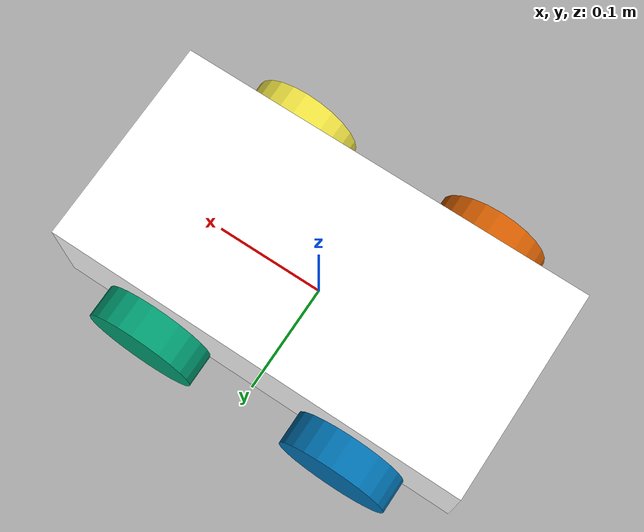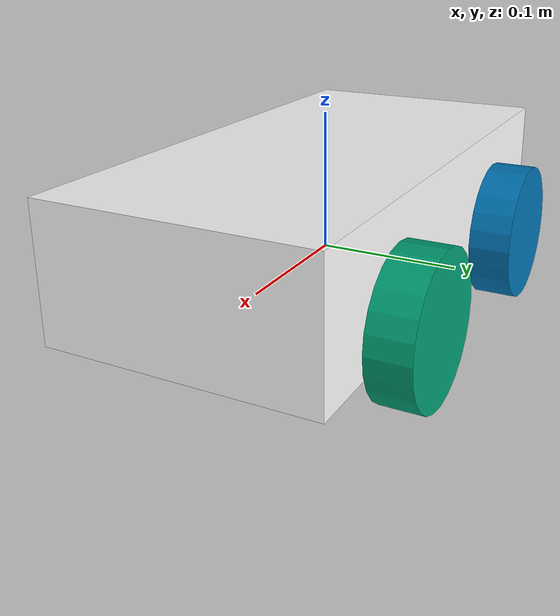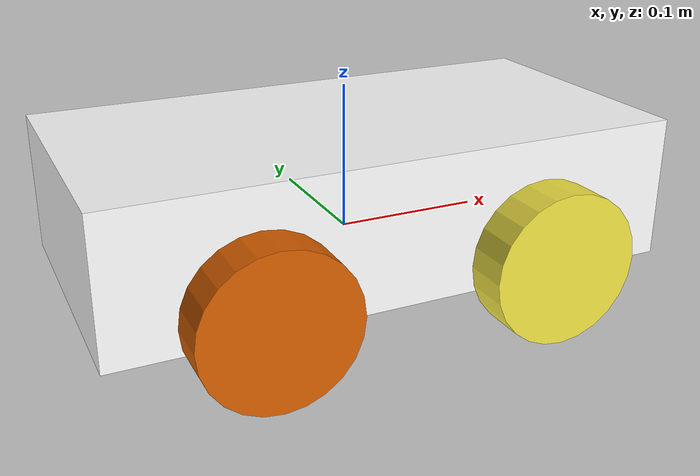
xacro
<?xml version="1.0"?>
<robot xmlns:xacro="http://www.ros.org/wiki/xacro">

    <xacro:include filename="inertial_macros.xacro"/>

    <material name="white">
        <color rgba="1 1 1 1" />
    </material>

    <material name="orange">
        <color rgba="1 0.3 0.1 1"/>
    </material>

    <material name="blue">
        <color rgba="0.2 0.2 1 1"/>
    </material>

    <material name="black">
        <color rgba="0 0 0 1"/>
    </material>

    <material name="red">
        <color rgba="1 0 0 1"/>
    </material>

    <!-- BASE LINK -->

    <link name="base_link">

    </link>

    <!-- CHASSIS LINK -->

    <joint name="chassis_joint" type="fixed">
        <parent link="base_link"/>
        <child link="chassis"/>
    </joint>

    <link name="chassis">
        <visual>
            <origin xyz="0 0 0.029795"/>
            <geometry>
                <box size="0.381 0.1905 0.09525"/>
            </geometry>
            <material name="white"/>
        </visual>
        <collision>
            <origin xyz="0 0 0.029795"/>
            <geometry>
                <box size="0.381 0.1905 0.09525"/>
            </geometry>
        </collision>
        <xacro:inertial_box mass="2.26" x="0.381" y="0.1905" z="0.09525">
            <origin xyz="0 0 0.029795" rpy="0 0 0"/>
        </xacro:inertial_box>

    </link>

    <!-- Left Front Wheel -->

    <joint name="left_front_wheel_joint" type="continuous">
        <parent link="base_link"/>
        <child link="left_front_wheel"/>
        <origin xyz="0.09525 0.111 0" rpy="-${pi/2} 0 0"/>
        <axis xyz="0 0 1"/>
    </joint>

    <link name="left_front_wheel">
        <visual>
            <geometry>
                <cylinder radius="0.0508" length="0.03"/>
                <material name="orange"/>
            </geometry>
        </visual>
        <collision>
            <geometry>
                <cylinder radius="0.0508" length="0.03"/>
            </geometry>
        </collision>
        <xacro:inertial_cylinder mass="0.15" length="0.003" radius="0.0508">
            <origin xyz="0 0 0" rpy="0 0 0"/>
        </xacro:inertial_cylinder>
    </link>

    <!-- Right Front Wheel -->

    <joint name="right_front_wheel_joint" type="continuous">
        <parent link="base_link"/>
        <child link="right_front_wheel"/>
        <origin xyz="0.09525 -0.111 0" rpy="${pi/2} 0 0"/>
        <axis xyz="0 0 -1"/>
    </joint>

    <link name="right_front_wheel">
        <visual>
            <geometry>
                <cylinder radius="0.0508" length="0.03"/>
                <material name="orange"/>
            </geometry>
        </visual>
        <collision>
            <geometry>
                <cylinder radius="0.0508" length="0.03"/>
            </geometry>
        </collision>
        <xacro:inertial_cylinder mass="0.15" length="0.003" radius="0.0508">
            <origin xyz="0 0 0" rpy="0 0 0"/>
        </xacro:inertial_cylinder>
    </link>

    <!-- Left Back Wheel -->

    <joint name="left_back_wheel_joint" type="continuous">
        <parent link="base_link"/>
        <child link="left_back_wheel"/>
        <origin xyz="-0.09525 0.111 0" rpy="-${pi/2} 0 0"/>
        <axis xyz="0 0 1"/>
    </joint>

    <link name="left_back_wheel">
        <visual>
            <geometry>
                <cylinder radius="0.0508" length="0.03"/>
                <material name="blue"/>
            </geometry>
        </visual>
        <collision>
            <geometry>
                <cylinder radius="0.0508" length="0.03"/>
            </geometry>
        </collision>
        <xacro:inertial_cylinder mass="0.15" length="0.003" radius="0.0508">
            <origin xyz="0 0 0" rpy="0 0 0"/>
        </xacro:inertial_cylinder>
    </link>

    <!-- Right back Wheel -->

    <joint name="right_back_wheel_joint" type="continuous">
        <parent link="base_link"/>
        <child link="right_back_wheel"/>
        <origin xyz="-0.09525 -0.111 0" rpy="${pi/2} 0 0"/>
        <axis xyz="0 0 -1"/>
    </joint>

    <link name="right_back_wheel">
        <visual>
            <geometry>
                <cylinder radius="0.0508" length="0.03"/>
                <material name="blue"/>
            </geometry>
        </visual>
        <collision>
            <geometry>
                <cylinder radius="0.0508" length="0.03"/>
            </geometry>
        </collision>
        <xacro:inertial_cylinder mass="0.15" length="0.003" radius="0.0508">
            <origin xyz="0 0 0" rpy="0 0 0"/>
        </xacro:inertial_cylinder>
    </link>

</robot>
